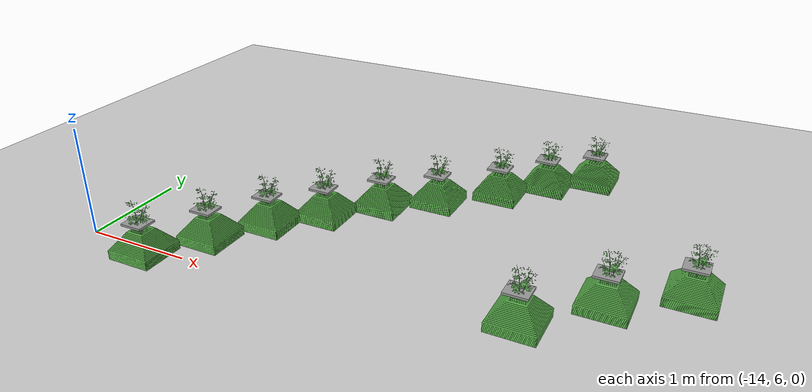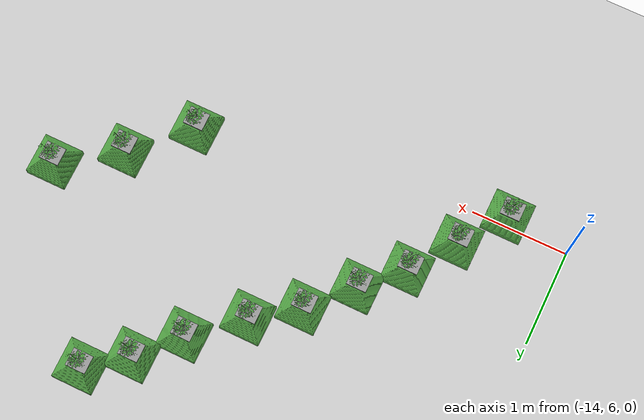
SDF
<sdf version="1.6">
 <world name="default">
  <model name="ground_plane">
   <static>1</static>
   <link name="link">
    <collision name="collision">
     <geometry><plane><normal>0 0 1</normal><size>100 100</size></plane></geometry>
     <surface><friction><ode><mu>100</mu><mu2>50</mu2></ode></friction></surface>
    </collision>
    <visual name="visual">
     <cast_shadows>0</cast_shadows>
     <geometry><plane><normal>0 0 1</normal><size>100 100</size></plane></geometry>
     <material>
      <script><uri>file://media/materials/scripts/gazebo.material</uri><name>Gazebo/Grey</name></script>
     </material>
    </visual>
   </link>
  </model>
  <model name="plant_18">
   <link name="link_0">
    <inertial>
     <mass>1</mass>
     <inertia>
      <ixx>0.0134051</ixx>
      <ixy>0</ixy>
      <ixz>0</ixz>
      <iyy>0.0134051</iyy>
      <iyz>0</iyz>
      <izz>0.0254102</izz>
     </inertia>
    </inertial>
    <gravity>0</gravity>
    <visual name="visual">
     <geometry><mesh><uri>model://square_pot/pot.stl</uri><scale>0.033 0.033 0.02</scale></mesh></geometry>
     <material>
      <lighting>1</lighting>
      <script><uri>file://media/materials/scripts/gazebo.material</uri><name>Gazebo/Grass</name></script>
      <ambient>0.3 0.3 0.3 1</ambient>
      <diffuse>0.7 0.7 0.7 1</diffuse>
      <specular>0.01 0.01 0.01 1</specular>
      <emissive>0 0 0 1</emissive>
      <shader type="vertex"><normal_map>__default__</normal_map></shader>
     </material>
    </visual>
    <collision name="collision">
     <pose>0 0 0.25 0 -0 0</pose>
     <geometry><box><size>0.4 0.4 0.4</size></box></geometry>
     <surface>
      <friction>
       <ode><mu>1</mu><mu2>1</mu2><fdir1>0 0 0</fdir1><slip1>0</slip1><slip2>0</slip2></ode>
       <torsional>
        <coefficient>1</coefficient>
        <patch_radius>0</patch_radius>
        <surface_radius>0</surface_radius>
        <use_patch_radius>1</use_patch_radius>
        <ode><slip>0</slip></ode>
       </torsional>
      </friction>
      <bounce><restitution_coefficient>0</restitution_coefficient><threshold>1e+06</threshold></bounce>
      <contact>
       <collide_without_contact>1</collide_without_contact>
       <collide_without_contact_bitmask>1</collide_without_contact_bitmask>
       <collide_bitmask>1</collide_bitmask>
       <ode>
        <soft_cfm>0</soft_cfm>
        <soft_erp>0.2</soft_erp>
        <kp>1e+13</kp>
        <kd>1</kd>
        <max_vel>0.01</max_vel>
        <min_depth>0</min_depth>
       </ode>
       <bullet>
        <split_impulse>1</split_impulse>
        <split_impulse_penetration_threshold>-0.01</split_impulse_penetration_threshold>
        <soft_cfm>0</soft_cfm>
        <soft_erp>0.2</soft_erp>
        <kp>1e+13</kp>
        <kd>1</kd>
       </bullet>
      </contact>
     </surface>
    </collision>
   </link>
   <link name="link_0_0">
    <pose>-0.011441 -0.008338 0.308474 0 -0 0</pose>
    <inertial>
     <mass>0.000736153</mass>
     <inertia>
      <ixx>2.11165e-06</ixx>
      <ixy>0</ixy>
      <ixz>0</ixz>
      <iyy>2.64382e-06</iyy>
      <iyz>0</iyz>
      <izz>4.70976e-06</izz>
     </inertia>
    </inertial>
    <visual name="visual">
     <geometry><box><size>0.206678 0.18452 0.019291</size></box></geometry>
     <material>
      <lighting>1</lighting>
      <script><uri>file://media/materials/scripts/gazebo.material</uri><name>Gazebo/Grey</name></script>
      <ambient>0.3 0.3 0.3 1</ambient>
      <diffuse>0.7 0.7 0.7 1</diffuse>
      <specular>0.01 0.01 0.01 1</specular>
      <emissive>0 0 0 1</emissive>
     </material>
    </visual>
    <collision name="collision">
     <geometry><box><size>0.206678 0.18452 0.019291</size></box></geometry>
     <surface>
      <friction>
       <ode><mu>1</mu><mu2>1</mu2><fdir1>0 0 0</fdir1><slip1>0</slip1><slip2>0</slip2></ode>
       <torsional>
        <coefficient>1</coefficient>
        <patch_radius>0</patch_radius>
        <surface_radius>0</surface_radius>
        <use_patch_radius>1</use_patch_radius>
        <ode><slip>0</slip></ode>
       </torsional>
      </friction>
      <bounce><restitution_coefficient>0</restitution_coefficient><threshold>1e+06</threshold></bounce>
      <contact>
       <collide_without_contact>0</collide_without_contact>
       <collide_without_contact_bitmask>1</collide_without_contact_bitmask>
       <collide_bitmask>1</collide_bitmask>
       <ode>
        <soft_cfm>0</soft_cfm>
        <soft_erp>0.2</soft_erp>
        <kp>1e+13</kp>
        <kd>1</kd>
        <max_vel>0.01</max_vel>
        <min_depth>0</min_depth>
       </ode>
       <bullet>
        <split_impulse>1</split_impulse>
        <split_impulse_penetration_threshold>-0.01</split_impulse_penetration_threshold>
        <soft_cfm>0</soft_cfm>
        <soft_erp>0.2</soft_erp>
        <kp>1e+13</kp>
        <kd>1</kd>
       </bullet>
      </contact>
     </surface>
    </collision>
   </link>
   <static>1</static>
   <pose>-10.1402 6.40915 0 0 -0 0</pose>
  </model>
  <model name="plant_19">
   <link name="link_0">
    <inertial>
     <mass>1</mass>
     <inertia>
      <ixx>0.0134051</ixx>
      <ixy>0</ixy>
      <ixz>0</ixz>
      <iyy>0.0134051</iyy>
      <iyz>0</iyz>
      <izz>0.0254102</izz>
     </inertia>
    </inertial>
    <gravity>0</gravity>
    <visual name="visual">
     <geometry><mesh><uri>model://square_pot/pot.stl</uri><scale>0.033 0.033 0.02</scale></mesh></geometry>
     <material>
      <lighting>1</lighting>
      <script><uri>file://media/materials/scripts/gazebo.material</uri><name>Gazebo/Grass</name></script>
      <ambient>0.3 0.3 0.3 1</ambient>
      <diffuse>0.7 0.7 0.7 1</diffuse>
      <specular>0.01 0.01 0.01 1</specular>
      <emissive>0 0 0 1</emissive>
      <shader type="vertex"><normal_map>__default__</normal_map></shader>
     </material>
    </visual>
    <collision name="collision">
     <pose>0 0 0.25 0 -0 0</pose>
     <geometry><box><size>0.4 0.4 0.4</size></box></geometry>
     <surface>
      <friction>
       <ode><mu>1</mu><mu2>1</mu2><fdir1>0 0 0</fdir1><slip1>0</slip1><slip2>0</slip2></ode>
       <torsional>
        <coefficient>1</coefficient>
        <patch_radius>0</patch_radius>
        <surface_radius>0</surface_radius>
        <use_patch_radius>1</use_patch_radius>
        <ode><slip>0</slip></ode>
       </torsional>
      </friction>
      <bounce><restitution_coefficient>0</restitution_coefficient><threshold>1e+06</threshold></bounce>
      <contact>
       <collide_without_contact>1</collide_without_contact>
       <collide_without_contact_bitmask>1</collide_without_contact_bitmask>
       <collide_bitmask>1</collide_bitmask>
       <ode>
        <soft_cfm>0</soft_cfm>
        <soft_erp>0.2</soft_erp>
        <kp>1e+13</kp>
        <kd>1</kd>
        <max_vel>0.01</max_vel>
        <min_depth>0</min_depth>
       </ode>
       <bullet>
        <split_impulse>1</split_impulse>
        <split_impulse_penetration_threshold>-0.01</split_impulse_penetration_threshold>
        <soft_cfm>0</soft_cfm>
        <soft_erp>0.2</soft_erp>
        <kp>1e+13</kp>
        <kd>1</kd>
       </bullet>
      </contact>
     </surface>
    </collision>
   </link>
   <link name="link_0_0">
    <pose>-0.011441 -0.008338 0.308474 0 -0 0</pose>
    <inertial>
     <mass>0.000736153</mass>
     <inertia>
      <ixx>2.11165e-06</ixx>
      <ixy>0</ixy>
      <ixz>0</ixz>
      <iyy>2.64382e-06</iyy>
      <iyz>0</iyz>
      <izz>4.70976e-06</izz>
     </inertia>
    </inertial>
    <visual name="visual">
     <geometry><box><size>0.206678 0.18452 0.019291</size></box></geometry>
     <material>
      <lighting>1</lighting>
      <script><uri>file://media/materials/scripts/gazebo.material</uri><name>Gazebo/Grey</name></script>
      <ambient>0.3 0.3 0.3 1</ambient>
      <diffuse>0.7 0.7 0.7 1</diffuse>
      <specular>0.01 0.01 0.01 1</specular>
      <emissive>0 0 0 1</emissive>
     </material>
    </visual>
    <collision name="collision">
     <geometry><box><size>0.206678 0.18452 0.019291</size></box></geometry>
     <surface>
      <friction>
       <ode><mu>1</mu><mu2>1</mu2><fdir1>0 0 0</fdir1><slip1>0</slip1><slip2>0</slip2></ode>
       <torsional>
        <coefficient>1</coefficient>
        <patch_radius>0</patch_radius>
        <surface_radius>0</surface_radius>
        <use_patch_radius>1</use_patch_radius>
        <ode><slip>0</slip></ode>
       </torsional>
      </friction>
      <bounce><restitution_coefficient>0</restitution_coefficient><threshold>1e+06</threshold></bounce>
      <contact>
       <collide_without_contact>0</collide_without_contact>
       <collide_without_contact_bitmask>1</collide_without_contact_bitmask>
       <collide_bitmask>1</collide_bitmask>
       <ode>
        <soft_cfm>0</soft_cfm>
        <soft_erp>0.2</soft_erp>
        <kp>1e+13</kp>
        <kd>1</kd>
        <max_vel>0.01</max_vel>
        <min_depth>0</min_depth>
       </ode>
       <bullet>
        <split_impulse>1</split_impulse>
        <split_impulse_penetration_threshold>-0.01</split_impulse_penetration_threshold>
        <soft_cfm>0</soft_cfm>
        <soft_erp>0.2</soft_erp>
        <kp>1e+13</kp>
        <kd>1</kd>
       </bullet>
      </contact>
     </surface>
    </collision>
   </link>
   <static>1</static>
   <pose>-9.60975 6.93094 0 0 -0 0</pose>
  </model>
  <model name="plant_20">
   <link name="link_0">
    <inertial>
     <mass>1</mass>
     <inertia>
      <ixx>0.0134051</ixx>
      <ixy>0</ixy>
      <ixz>0</ixz>
      <iyy>0.0134051</iyy>
      <iyz>0</iyz>
      <izz>0.0254102</izz>
     </inertia>
    </inertial>
    <gravity>0</gravity>
    <visual name="visual">
     <geometry><mesh><uri>model://square_pot/pot.stl</uri><scale>0.033 0.033 0.02</scale></mesh></geometry>
     <material>
      <lighting>1</lighting>
      <script><uri>file://media/materials/scripts/gazebo.material</uri><name>Gazebo/Grass</name></script>
      <ambient>0.3 0.3 0.3 1</ambient>
      <diffuse>0.7 0.7 0.7 1</diffuse>
      <specular>0.01 0.01 0.01 1</specular>
      <emissive>0 0 0 1</emissive>
      <shader type="vertex"><normal_map>__default__</normal_map></shader>
     </material>
    </visual>
    <collision name="collision">
     <pose>0 0 0.25 0 -0 0</pose>
     <geometry><box><size>0.4 0.4 0.4</size></box></geometry>
     <surface>
      <friction>
       <ode><mu>1</mu><mu2>1</mu2><fdir1>0 0 0</fdir1><slip1>0</slip1><slip2>0</slip2></ode>
       <torsional>
        <coefficient>1</coefficient>
        <patch_radius>0</patch_radius>
        <surface_radius>0</surface_radius>
        <use_patch_radius>1</use_patch_radius>
        <ode><slip>0</slip></ode>
       </torsional>
      </friction>
      <bounce><restitution_coefficient>0</restitution_coefficient><threshold>1e+06</threshold></bounce>
      <contact>
       <collide_without_contact>1</collide_without_contact>
       <collide_without_contact_bitmask>1</collide_without_contact_bitmask>
       <collide_bitmask>1</collide_bitmask>
       <ode>
        <soft_cfm>0</soft_cfm>
        <soft_erp>0.2</soft_erp>
        <kp>1e+13</kp>
        <kd>1</kd>
        <max_vel>0.01</max_vel>
        <min_depth>0</min_depth>
       </ode>
       <bullet>
        <split_impulse>1</split_impulse>
        <split_impulse_penetration_threshold>-0.01</split_impulse_penetration_threshold>
        <soft_cfm>0</soft_cfm>
        <soft_erp>0.2</soft_erp>
        <kp>1e+13</kp>
        <kd>1</kd>
       </bullet>
      </contact>
     </surface>
    </collision>
   </link>
   <link name="link_0_0">
    <pose>-0.011441 -0.008338 0.308474 0 -0 0</pose>
    <inertial>
     <mass>0.000736153</mass>
     <inertia>
      <ixx>2.11165e-06</ixx>
      <ixy>0</ixy>
      <ixz>0</ixz>
      <iyy>2.64382e-06</iyy>
      <iyz>0</iyz>
      <izz>4.70976e-06</izz>
     </inertia>
    </inertial>
    <visual name="visual">
     <geometry><box><size>0.206678 0.18452 0.019291</size></box></geometry>
     <material>
      <lighting>1</lighting>
      <script><uri>file://media/materials/scripts/gazebo.material</uri><name>Gazebo/Grey</name></script>
      <ambient>0.3 0.3 0.3 1</ambient>
      <diffuse>0.7 0.7 0.7 1</diffuse>
      <specular>0.01 0.01 0.01 1</specular>
      <emissive>0 0 0 1</emissive>
     </material>
    </visual>
    <collision name="collision">
     <geometry><box><size>0.206678 0.18452 0.019291</size></box></geometry>
     <surface>
      <friction>
       <ode><mu>1</mu><mu2>1</mu2><fdir1>0 0 0</fdir1><slip1>0</slip1><slip2>0</slip2></ode>
       <torsional>
        <coefficient>1</coefficient>
        <patch_radius>0</patch_radius>
        <surface_radius>0</surface_radius>
        <use_patch_radius>1</use_patch_radius>
        <ode><slip>0</slip></ode>
       </torsional>
      </friction>
      <bounce><restitution_coefficient>0</restitution_coefficient><threshold>1e+06</threshold></bounce>
      <contact>
       <collide_without_contact>0</collide_without_contact>
       <collide_without_contact_bitmask>1</collide_without_contact_bitmask>
       <collide_bitmask>1</collide_bitmask>
       <ode>
        <soft_cfm>0</soft_cfm>
        <soft_erp>0.2</soft_erp>
        <kp>1e+13</kp>
        <kd>1</kd>
        <max_vel>0.01</max_vel>
        <min_depth>0</min_depth>
       </ode>
       <bullet>
        <split_impulse>1</split_impulse>
        <split_impulse_penetration_threshold>-0.01</split_impulse_penetration_threshold>
        <soft_cfm>0</soft_cfm>
        <soft_erp>0.2</soft_erp>
        <kp>1e+13</kp>
        <kd>1</kd>
       </bullet>
      </contact>
     </surface>
    </collision>
   </link>
   <static>1</static>
   <pose>-9.02744 7.34405 0 0 -0 0</pose>
  </model>
  <model name="plant_21">
   <link name="link_0">
    <inertial>
     <mass>1</mass>
     <inertia>
      <ixx>0.0134051</ixx>
      <ixy>0</ixy>
      <ixz>0</ixz>
      <iyy>0.0134051</iyy>
      <iyz>0</iyz>
      <izz>0.0254102</izz>
     </inertia>
    </inertial>
    <gravity>0</gravity>
    <visual name="visual">
     <geometry><mesh><uri>model://square_pot/pot.stl</uri><scale>0.033 0.033 0.02</scale></mesh></geometry>
     <material>
      <lighting>1</lighting>
      <script><uri>file://media/materials/scripts/gazebo.material</uri><name>Gazebo/Grass</name></script>
      <ambient>0.3 0.3 0.3 1</ambient>
      <diffuse>0.7 0.7 0.7 1</diffuse>
      <specular>0.01 0.01 0.01 1</specular>
      <emissive>0 0 0 1</emissive>
      <shader type="vertex"><normal_map>__default__</normal_map></shader>
     </material>
    </visual>
    <collision name="collision">
     <pose>0 0 0.25 0 -0 0</pose>
     <geometry><box><size>0.4 0.4 0.4</size></box></geometry>
     <surface>
      <friction>
       <ode><mu>1</mu><mu2>1</mu2><fdir1>0 0 0</fdir1><slip1>0</slip1><slip2>0</slip2></ode>
       <torsional>
        <coefficient>1</coefficient>
        <patch_radius>0</patch_radius>
        <surface_radius>0</surface_radius>
        <use_patch_radius>1</use_patch_radius>
        <ode><slip>0</slip></ode>
       </torsional>
      </friction>
      <bounce><restitution_coefficient>0</restitution_coefficient><threshold>1e+06</threshold></bounce>
      <contact>
       <collide_without_contact>1</collide_without_contact>
       <collide_without_contact_bitmask>1</collide_without_contact_bitmask>
       <collide_bitmask>1</collide_bitmask>
       <ode>
        <soft_cfm>0</soft_cfm>
        <soft_erp>0.2</soft_erp>
        <kp>1e+13</kp>
        <kd>1</kd>
        <max_vel>0.01</max_vel>
        <min_depth>0</min_depth>
       </ode>
       <bullet>
        <split_impulse>1</split_impulse>
        <split_impulse_penetration_threshold>-0.01</split_impulse_penetration_threshold>
        <soft_cfm>0</soft_cfm>
        <soft_erp>0.2</soft_erp>
        <kp>1e+13</kp>
        <kd>1</kd>
       </bullet>
      </contact>
     </surface>
    </collision>
   </link>
   <link name="link_0_0">
    <pose>-0.011441 -0.008338 0.308474 0 -0 0</pose>
    <inertial>
     <mass>0.000736153</mass>
     <inertia>
      <ixx>2.11165e-06</ixx>
      <ixy>0</ixy>
      <ixz>0</ixz>
      <iyy>2.64382e-06</iyy>
      <iyz>0</iyz>
      <izz>4.70976e-06</izz>
     </inertia>
    </inertial>
    <visual name="visual">
     <geometry><box><size>0.206678 0.18452 0.019291</size></box></geometry>
     <material>
      <lighting>1</lighting>
      <script><uri>file://media/materials/scripts/gazebo.material</uri><name>Gazebo/Grey</name></script>
      <ambient>0.3 0.3 0.3 1</ambient>
      <diffuse>0.7 0.7 0.7 1</diffuse>
      <specular>0.01 0.01 0.01 1</specular>
      <emissive>0 0 0 1</emissive>
     </material>
    </visual>
    <collision name="collision">
     <geometry><box><size>0.206678 0.18452 0.019291</size></box></geometry>
     <surface>
      <friction>
       <ode><mu>1</mu><mu2>1</mu2><fdir1>0 0 0</fdir1><slip1>0</slip1><slip2>0</slip2></ode>
       <torsional>
        <coefficient>1</coefficient>
        <patch_radius>0</patch_radius>
        <surface_radius>0</surface_radius>
        <use_patch_radius>1</use_patch_radius>
        <ode><slip>0</slip></ode>
       </torsional>
      </friction>
      <bounce><restitution_coefficient>0</restitution_coefficient><threshold>1e+06</threshold></bounce>
      <contact>
       <collide_without_contact>0</collide_without_contact>
       <collide_without_contact_bitmask>1</collide_without_contact_bitmask>
       <collide_bitmask>1</collide_bitmask>
       <ode>
        <soft_cfm>0</soft_cfm>
        <soft_erp>0.2</soft_erp>
        <kp>1e+13</kp>
        <kd>1</kd>
        <max_vel>0.01</max_vel>
        <min_depth>0</min_depth>
       </ode>
       <bullet>
        <split_impulse>1</split_impulse>
        <split_impulse_penetration_threshold>-0.01</split_impulse_penetration_threshold>
        <soft_cfm>0</soft_cfm>
        <soft_erp>0.2</soft_erp>
        <kp>1e+13</kp>
        <kd>1</kd>
       </bullet>
      </contact>
     </surface>
    </collision>
   </link>
   <static>1</static>
   <pose>-13.3305 5.9089 0 0 -0 0</pose>
  </model>
  <model name="plant_22">
   <link name="link_0">
    <inertial>
     <mass>1</mass>
     <inertia>
      <ixx>0.0134051</ixx>
      <ixy>0</ixy>
      <ixz>0</ixz>
      <iyy>0.0134051</iyy>
      <iyz>0</iyz>
      <izz>0.0254102</izz>
     </inertia>
    </inertial>
    <gravity>0</gravity>
    <visual name="visual">
     <geometry><mesh><uri>model://square_pot/pot.stl</uri><scale>0.033 0.033 0.02</scale></mesh></geometry>
     <material>
      <lighting>1</lighting>
      <script><uri>file://media/materials/scripts/gazebo.material</uri><name>Gazebo/Grass</name></script>
      <ambient>0.3 0.3 0.3 1</ambient>
      <diffuse>0.7 0.7 0.7 1</diffuse>
      <specular>0.01 0.01 0.01 1</specular>
      <emissive>0 0 0 1</emissive>
      <shader type="vertex"><normal_map>__default__</normal_map></shader>
     </material>
    </visual>
    <collision name="collision">
     <pose>0 0 0.25 0 -0 0</pose>
     <geometry><box><size>0.4 0.4 0.4</size></box></geometry>
     <surface>
      <friction>
       <ode><mu>1</mu><mu2>1</mu2><fdir1>0 0 0</fdir1><slip1>0</slip1><slip2>0</slip2></ode>
       <torsional>
        <coefficient>1</coefficient>
        <patch_radius>0</patch_radius>
        <surface_radius>0</surface_radius>
        <use_patch_radius>1</use_patch_radius>
        <ode><slip>0</slip></ode>
       </torsional>
      </friction>
      <bounce><restitution_coefficient>0</restitution_coefficient><threshold>1e+06</threshold></bounce>
      <contact>
       <collide_without_contact>1</collide_without_contact>
       <collide_without_contact_bitmask>1</collide_without_contact_bitmask>
       <collide_bitmask>1</collide_bitmask>
       <ode>
        <soft_cfm>0</soft_cfm>
        <soft_erp>0.2</soft_erp>
        <kp>1e+13</kp>
        <kd>1</kd>
        <max_vel>0.01</max_vel>
        <min_depth>0</min_depth>
       </ode>
       <bullet>
        <split_impulse>1</split_impulse>
        <split_impulse_penetration_threshold>-0.01</split_impulse_penetration_threshold>
        <soft_cfm>0</soft_cfm>
        <soft_erp>0.2</soft_erp>
        <kp>1e+13</kp>
        <kd>1</kd>
       </bullet>
      </contact>
     </surface>
    </collision>
   </link>
   <link name="link_0_0">
    <pose>-0.011441 -0.008338 0.308474 0 -0 0</pose>
    <inertial>
     <mass>0.000736153</mass>
     <inertia>
      <ixx>2.11165e-06</ixx>
      <ixy>0</ixy>
      <ixz>0</ixz>
      <iyy>2.64382e-06</iyy>
      <iyz>0</iyz>
      <izz>4.70976e-06</izz>
     </inertia>
    </inertial>
    <visual name="visual">
     <geometry><box><size>0.206678 0.18452 0.019291</size></box></geometry>
     <material>
      <lighting>1</lighting>
      <script><uri>file://media/materials/scripts/gazebo.material</uri><name>Gazebo/Grey</name></script>
      <ambient>0.3 0.3 0.3 1</ambient>
      <diffuse>0.7 0.7 0.7 1</diffuse>
      <specular>0.01 0.01 0.01 1</specular>
      <emissive>0 0 0 1</emissive>
     </material>
    </visual>
    <collision name="collision">
     <geometry><box><size>0.206678 0.18452 0.019291</size></box></geometry>
     <surface>
      <friction>
       <ode><mu>1</mu><mu2>1</mu2><fdir1>0 0 0</fdir1><slip1>0</slip1><slip2>0</slip2></ode>
       <torsional>
        <coefficient>1</coefficient>
        <patch_radius>0</patch_radius>
        <surface_radius>0</surface_radius>
        <use_patch_radius>1</use_patch_radius>
        <ode><slip>0</slip></ode>
       </torsional>
      </friction>
      <bounce><restitution_coefficient>0</restitution_coefficient><threshold>1e+06</threshold></bounce>
      <contact>
       <collide_without_contact>0</collide_without_contact>
       <collide_without_contact_bitmask>1</collide_without_contact_bitmask>
       <collide_bitmask>1</collide_bitmask>
       <ode>
        <soft_cfm>0</soft_cfm>
        <soft_erp>0.2</soft_erp>
        <kp>1e+13</kp>
        <kd>1</kd>
        <max_vel>0.01</max_vel>
        <min_depth>0</min_depth>
       </ode>
       <bullet>
        <split_impulse>1</split_impulse>
        <split_impulse_penetration_threshold>-0.01</split_impulse_penetration_threshold>
        <soft_cfm>0</soft_cfm>
        <soft_erp>0.2</soft_erp>
        <kp>1e+13</kp>
        <kd>1</kd>
       </bullet>
      </contact>
     </surface>
    </collision>
   </link>
   <static>1</static>
   <pose>-12.9815 6.36473 0 0 -0 0</pose>
  </model>
  <model name="plant_23">
   <link name="link_0">
    <inertial>
     <mass>1</mass>
     <inertia>
      <ixx>0.0134051</ixx>
      <ixy>0</ixy>
      <ixz>0</ixz>
      <iyy>0.0134051</iyy>
      <iyz>0</iyz>
      <izz>0.0254102</izz>
     </inertia>
    </inertial>
    <gravity>0</gravity>
    <visual name="visual">
     <geometry><mesh><uri>model://square_pot/pot.stl</uri><scale>0.033 0.033 0.02</scale></mesh></geometry>
     <material>
      <lighting>1</lighting>
      <script><uri>file://media/materials/scripts/gazebo.material</uri><name>Gazebo/Grass</name></script>
      <ambient>0.3 0.3 0.3 1</ambient>
      <diffuse>0.7 0.7 0.7 1</diffuse>
      <specular>0.01 0.01 0.01 1</specular>
      <emissive>0 0 0 1</emissive>
      <shader type="vertex"><normal_map>__default__</normal_map></shader>
     </material>
    </visual>
    <collision name="collision">
     <pose>0 0 0.25 0 -0 0</pose>
     <geometry><box><size>0.4 0.4 0.4</size></box></geometry>
     <surface>
      <friction>
       <ode><mu>1</mu><mu2>1</mu2><fdir1>0 0 0</fdir1><slip1>0</slip1><slip2>0</slip2></ode>
       <torsional>
        <coefficient>1</coefficient>
        <patch_radius>0</patch_radius>
        <surface_radius>0</surface_radius>
        <use_patch_radius>1</use_patch_radius>
        <ode><slip>0</slip></ode>
       </torsional>
      </friction>
      <bounce><restitution_coefficient>0</restitution_coefficient><threshold>1e+06</threshold></bounce>
      <contact>
       <collide_without_contact>1</collide_without_contact>
       <collide_without_contact_bitmask>1</collide_without_contact_bitmask>
       <collide_bitmask>1</collide_bitmask>
       <ode>
        <soft_cfm>0</soft_cfm>
        <soft_erp>0.2</soft_erp>
        <kp>1e+13</kp>
        <kd>1</kd>
        <max_vel>0.01</max_vel>
        <min_depth>0</min_depth>
       </ode>
       <bullet>
        <split_impulse>1</split_impulse>
        <split_impulse_penetration_threshold>-0.01</split_impulse_penetration_threshold>
        <soft_cfm>0</soft_cfm>
        <soft_erp>0.2</soft_erp>
        <kp>1e+13</kp>
        <kd>1</kd>
       </bullet>
      </contact>
     </surface>
    </collision>
   </link>
   <link name="link_0_0">
    <pose>-0.011441 -0.008338 0.308474 0 -0 0</pose>
    <inertial>
     <mass>0.000736153</mass>
     <inertia>
      <ixx>2.11165e-06</ixx>
      <ixy>0</ixy>
      <ixz>0</ixz>
      <iyy>2.64382e-06</iyy>
      <iyz>0</iyz>
      <izz>4.70976e-06</izz>
     </inertia>
    </inertial>
    <visual name="visual">
     <geometry><box><size>0.206678 0.18452 0.019291</size></box></geometry>
     <material>
      <lighting>1</lighting>
      <script><uri>file://media/materials/scripts/gazebo.material</uri><name>Gazebo/Grey</name></script>
      <ambient>0.3 0.3 0.3 1</ambient>
      <diffuse>0.7 0.7 0.7 1</diffuse>
      <specular>0.01 0.01 0.01 1</specular>
      <emissive>0 0 0 1</emissive>
     </material>
    </visual>
    <collision name="collision">
     <geometry><box><size>0.206678 0.18452 0.019291</size></box></geometry>
     <surface>
      <friction>
       <ode><mu>1</mu><mu2>1</mu2><fdir1>0 0 0</fdir1><slip1>0</slip1><slip2>0</slip2></ode>
       <torsional>
        <coefficient>1</coefficient>
        <patch_radius>0</patch_radius>
        <surface_radius>0</surface_radius>
        <use_patch_radius>1</use_patch_radius>
        <ode><slip>0</slip></ode>
       </torsional>
      </friction>
      <bounce><restitution_coefficient>0</restitution_coefficient><threshold>1e+06</threshold></bounce>
      <contact>
       <collide_without_contact>0</collide_without_contact>
       <collide_without_contact_bitmask>1</collide_without_contact_bitmask>
       <collide_bitmask>1</collide_bitmask>
       <ode>
        <soft_cfm>0</soft_cfm>
        <soft_erp>0.2</soft_erp>
        <kp>1e+13</kp>
        <kd>1</kd>
        <max_vel>0.01</max_vel>
        <min_depth>0</min_depth>
       </ode>
       <bullet>
        <split_impulse>1</split_impulse>
        <split_impulse_penetration_threshold>-0.01</split_impulse_penetration_threshold>
        <soft_cfm>0</soft_cfm>
        <soft_erp>0.2</soft_erp>
        <kp>1e+13</kp>
        <kd>1</kd>
       </bullet>
      </contact>
     </surface>
    </collision>
   </link>
   <static>1</static>
   <pose>-12.6564 6.82435 0 0 -0 0</pose>
  </model>
  <model name="plant_24">
   <link name="link_0">
    <inertial>
     <mass>1</mass>
     <inertia>
      <ixx>0.0134051</ixx>
      <ixy>0</ixy>
      <ixz>0</ixz>
      <iyy>0.0134051</iyy>
      <iyz>0</iyz>
      <izz>0.0254102</izz>
     </inertia>
    </inertial>
    <gravity>0</gravity>
    <visual name="visual">
     <geometry><mesh><uri>model://square_pot/pot.stl</uri><scale>0.033 0.033 0.02</scale></mesh></geometry>
     <material>
      <lighting>1</lighting>
      <script><uri>file://media/materials/scripts/gazebo.material</uri><name>Gazebo/Grass</name></script>
      <ambient>0.3 0.3 0.3 1</ambient>
      <diffuse>0.7 0.7 0.7 1</diffuse>
      <specular>0.01 0.01 0.01 1</specular>
      <emissive>0 0 0 1</emissive>
      <shader type="vertex"><normal_map>__default__</normal_map></shader>
     </material>
    </visual>
    <collision name="collision">
     <pose>0 0 0.25 0 -0 0</pose>
     <geometry><box><size>0.4 0.4 0.4</size></box></geometry>
     <surface>
      <friction>
       <ode><mu>1</mu><mu2>1</mu2><fdir1>0 0 0</fdir1><slip1>0</slip1><slip2>0</slip2></ode>
       <torsional>
        <coefficient>1</coefficient>
        <patch_radius>0</patch_radius>
        <surface_radius>0</surface_radius>
        <use_patch_radius>1</use_patch_radius>
        <ode><slip>0</slip></ode>
       </torsional>
      </friction>
      <bounce><restitution_coefficient>0</restitution_coefficient><threshold>1e+06</threshold></bounce>
      <contact>
       <collide_without_contact>1</collide_without_contact>
       <collide_without_contact_bitmask>1</collide_without_contact_bitmask>
       <collide_bitmask>1</collide_bitmask>
       <ode>
        <soft_cfm>0</soft_cfm>
        <soft_erp>0.2</soft_erp>
        <kp>1e+13</kp>
        <kd>1</kd>
        <max_vel>0.01</max_vel>
        <min_depth>0</min_depth>
       </ode>
       <bullet>
        <split_impulse>1</split_impulse>
        <split_impulse_penetration_threshold>-0.01</split_impulse_penetration_threshold>
        <soft_cfm>0</soft_cfm>
        <soft_erp>0.2</soft_erp>
        <kp>1e+13</kp>
        <kd>1</kd>
       </bullet>
      </contact>
     </surface>
    </collision>
   </link>
   <link name="link_0_0">
    <pose>-0.011441 -0.008338 0.308474 0 -0 0</pose>
    <inertial>
     <mass>0.000736153</mass>
     <inertia>
      <ixx>2.11165e-06</ixx>
      <ixy>0</ixy>
      <ixz>0</ixz>
      <iyy>2.64382e-06</iyy>
      <iyz>0</iyz>
      <izz>4.70976e-06</izz>
     </inertia>
    </inertial>
    <visual name="visual">
     <geometry><box><size>0.206678 0.18452 0.019291</size></box></geometry>
     <material>
      <lighting>1</lighting>
      <script><uri>file://media/materials/scripts/gazebo.material</uri><name>Gazebo/Grey</name></script>
      <ambient>0.3 0.3 0.3 1</ambient>
      <diffuse>0.7 0.7 0.7 1</diffuse>
      <specular>0.01 0.01 0.01 1</specular>
      <emissive>0 0 0 1</emissive>
     </material>
    </visual>
    <collision name="collision">
     <geometry><box><size>0.206678 0.18452 0.019291</size></box></geometry>
     <surface>
      <friction>
       <ode><mu>1</mu><mu2>1</mu2><fdir1>0 0 0</fdir1><slip1>0</slip1><slip2>0</slip2></ode>
       <torsional>
        <coefficient>1</coefficient>
        <patch_radius>0</patch_radius>
        <surface_radius>0</surface_radius>
        <use_patch_radius>1</use_patch_radius>
        <ode><slip>0</slip></ode>
       </torsional>
      </friction>
      <bounce><restitution_coefficient>0</restitution_coefficient><threshold>1e+06</threshold></bounce>
      <contact>
       <collide_without_contact>0</collide_without_contact>
       <collide_without_contact_bitmask>1</collide_without_contact_bitmask>
       <collide_bitmask>1</collide_bitmask>
       <ode>
        <soft_cfm>0</soft_cfm>
        <soft_erp>0.2</soft_erp>
        <kp>1e+13</kp>
        <kd>1</kd>
        <max_vel>0.01</max_vel>
        <min_depth>0</min_depth>
       </ode>
       <bullet>
        <split_impulse>1</split_impulse>
        <split_impulse_penetration_threshold>-0.01</split_impulse_penetration_threshold>
        <soft_cfm>0</soft_cfm>
        <soft_erp>0.2</soft_erp>
        <kp>1e+13</kp>
        <kd>1</kd>
       </bullet>
      </contact>
     </surface>
    </collision>
   </link>
   <static>1</static>
   <pose>-12.2862 7.19538 0 0 -0 0</pose>
  </model>
  <model name="plant_25">
   <link name="link_0">
    <inertial>
     <mass>1</mass>
     <inertia>
      <ixx>0.0134051</ixx>
      <ixy>0</ixy>
      <ixz>0</ixz>
      <iyy>0.0134051</iyy>
      <iyz>0</iyz>
      <izz>0.0254102</izz>
     </inertia>
    </inertial>
    <gravity>0</gravity>
    <visual name="visual">
     <geometry><mesh><uri>model://square_pot/pot.stl</uri><scale>0.033 0.033 0.02</scale></mesh></geometry>
     <material>
      <lighting>1</lighting>
      <script><uri>file://media/materials/scripts/gazebo.material</uri><name>Gazebo/Grass</name></script>
      <ambient>0.3 0.3 0.3 1</ambient>
      <diffuse>0.7 0.7 0.7 1</diffuse>
      <specular>0.01 0.01 0.01 1</specular>
      <emissive>0 0 0 1</emissive>
      <shader type="vertex"><normal_map>__default__</normal_map></shader>
     </material>
    </visual>
    <collision name="collision">
     <pose>0 0 0.25 0 -0 0</pose>
     <geometry><box><size>0.4 0.4 0.4</size></box></geometry>
     <surface>
      <friction>
       <ode><mu>1</mu><mu2>1</mu2><fdir1>0 0 0</fdir1><slip1>0</slip1><slip2>0</slip2></ode>
       <torsional>
        <coefficient>1</coefficient>
        <patch_radius>0</patch_radius>
        <surface_radius>0</surface_radius>
        <use_patch_radius>1</use_patch_radius>
        <ode><slip>0</slip></ode>
       </torsional>
      </friction>
      <bounce><restitution_coefficient>0</restitution_coefficient><threshold>1e+06</threshold></bounce>
      <contact>
       <collide_without_contact>1</collide_without_contact>
       <collide_without_contact_bitmask>1</collide_without_contact_bitmask>
       <collide_bitmask>1</collide_bitmask>
       <ode>
        <soft_cfm>0</soft_cfm>
        <soft_erp>0.2</soft_erp>
        <kp>1e+13</kp>
        <kd>1</kd>
        <max_vel>0.01</max_vel>
        <min_depth>0</min_depth>
       </ode>
       <bullet>
        <split_impulse>1</split_impulse>
        <split_impulse_penetration_threshold>-0.01</split_impulse_penetration_threshold>
        <soft_cfm>0</soft_cfm>
        <soft_erp>0.2</soft_erp>
        <kp>1e+13</kp>
        <kd>1</kd>
       </bullet>
      </contact>
     </surface>
    </collision>
   </link>
   <link name="link_0_0">
    <pose>-0.011441 -0.008338 0.308474 0 -0 0</pose>
    <inertial>
     <mass>0.000736153</mass>
     <inertia>
      <ixx>2.11165e-06</ixx>
      <ixy>0</ixy>
      <ixz>0</ixz>
      <iyy>2.64382e-06</iyy>
      <iyz>0</iyz>
      <izz>4.70976e-06</izz>
     </inertia>
    </inertial>
    <visual name="visual">
     <geometry><box><size>0.206678 0.18452 0.019291</size></box></geometry>
     <material>
      <lighting>1</lighting>
      <script><uri>file://media/materials/scripts/gazebo.material</uri><name>Gazebo/Grey</name></script>
      <ambient>0.3 0.3 0.3 1</ambient>
      <diffuse>0.7 0.7 0.7 1</diffuse>
      <specular>0.01 0.01 0.01 1</specular>
      <emissive>0 0 0 1</emissive>
     </material>
    </visual>
    <collision name="collision">
     <geometry><box><size>0.206678 0.18452 0.019291</size></box></geometry>
     <surface>
      <friction>
       <ode><mu>1</mu><mu2>1</mu2><fdir1>0 0 0</fdir1><slip1>0</slip1><slip2>0</slip2></ode>
       <torsional>
        <coefficient>1</coefficient>
        <patch_radius>0</patch_radius>
        <surface_radius>0</surface_radius>
        <use_patch_radius>1</use_patch_radius>
        <ode><slip>0</slip></ode>
       </torsional>
      </friction>
      <bounce><restitution_coefficient>0</restitution_coefficient><threshold>1e+06</threshold></bounce>
      <contact>
       <collide_without_contact>0</collide_without_contact>
       <collide_without_contact_bitmask>1</collide_without_contact_bitmask>
       <collide_bitmask>1</collide_bitmask>
       <ode>
        <soft_cfm>0</soft_cfm>
        <soft_erp>0.2</soft_erp>
        <kp>1e+13</kp>
        <kd>1</kd>
        <max_vel>0.01</max_vel>
        <min_depth>0</min_depth>
       </ode>
       <bullet>
        <split_impulse>1</split_impulse>
        <split_impulse_penetration_threshold>-0.01</split_impulse_penetration_threshold>
        <soft_cfm>0</soft_cfm>
        <soft_erp>0.2</soft_erp>
        <kp>1e+13</kp>
        <kd>1</kd>
       </bullet>
      </contact>
     </surface>
    </collision>
   </link>
   <static>1</static>
   <pose>-11.8999 7.60931 0 0 -0 0</pose>
  </model>
  <model name="plant_26">
   <link name="link_0">
    <inertial>
     <mass>1</mass>
     <inertia>
      <ixx>0.0134051</ixx>
      <ixy>0</ixy>
      <ixz>0</ixz>
      <iyy>0.0134051</iyy>
      <iyz>0</iyz>
      <izz>0.0254102</izz>
     </inertia>
    </inertial>
    <gravity>0</gravity>
    <visual name="visual">
     <geometry><mesh><uri>model://square_pot/pot.stl</uri><scale>0.033 0.033 0.02</scale></mesh></geometry>
     <material>
      <lighting>1</lighting>
      <script><uri>file://media/materials/scripts/gazebo.material</uri><name>Gazebo/Grass</name></script>
      <ambient>0.3 0.3 0.3 1</ambient>
      <diffuse>0.7 0.7 0.7 1</diffuse>
      <specular>0.01 0.01 0.01 1</specular>
      <emissive>0 0 0 1</emissive>
      <shader type="vertex"><normal_map>__default__</normal_map></shader>
     </material>
    </visual>
    <collision name="collision">
     <pose>0 0 0.25 0 -0 0</pose>
     <geometry><box><size>0.4 0.4 0.4</size></box></geometry>
     <surface>
      <friction>
       <ode><mu>1</mu><mu2>1</mu2><fdir1>0 0 0</fdir1><slip1>0</slip1><slip2>0</slip2></ode>
       <torsional>
        <coefficient>1</coefficient>
        <patch_radius>0</patch_radius>
        <surface_radius>0</surface_radius>
        <use_patch_radius>1</use_patch_radius>
        <ode><slip>0</slip></ode>
       </torsional>
      </friction>
      <bounce><restitution_coefficient>0</restitution_coefficient><threshold>1e+06</threshold></bounce>
      <contact>
       <collide_without_contact>1</collide_without_contact>
       <collide_without_contact_bitmask>1</collide_without_contact_bitmask>
       <collide_bitmask>1</collide_bitmask>
       <ode>
        <soft_cfm>0</soft_cfm>
        <soft_erp>0.2</soft_erp>
        <kp>1e+13</kp>
        <kd>1</kd>
        <max_vel>0.01</max_vel>
        <min_depth>0</min_depth>
       </ode>
       <bullet>
        <split_impulse>1</split_impulse>
        <split_impulse_penetration_threshold>-0.01</split_impulse_penetration_threshold>
        <soft_cfm>0</soft_cfm>
        <soft_erp>0.2</soft_erp>
        <kp>1e+13</kp>
        <kd>1</kd>
       </bullet>
      </contact>
     </surface>
    </collision>
   </link>
   <link name="link_0_0">
    <pose>-0.011441 -0.008338 0.308474 0 -0 0</pose>
    <inertial>
     <mass>0.000736153</mass>
     <inertia>
      <ixx>2.11165e-06</ixx>
      <ixy>0</ixy>
      <ixz>0</ixz>
      <iyy>2.64382e-06</iyy>
      <iyz>0</iyz>
      <izz>4.70976e-06</izz>
     </inertia>
    </inertial>
    <visual name="visual">
     <geometry><box><size>0.206678 0.18452 0.019291</size></box></geometry>
     <material>
      <lighting>1</lighting>
      <script><uri>file://media/materials/scripts/gazebo.material</uri><name>Gazebo/Grey</name></script>
      <ambient>0.3 0.3 0.3 1</ambient>
      <diffuse>0.7 0.7 0.7 1</diffuse>
      <specular>0.01 0.01 0.01 1</specular>
      <emissive>0 0 0 1</emissive>
     </material>
    </visual>
    <collision name="collision">
     <geometry><box><size>0.206678 0.18452 0.019291</size></box></geometry>
     <surface>
      <friction>
       <ode><mu>1</mu><mu2>1</mu2><fdir1>0 0 0</fdir1><slip1>0</slip1><slip2>0</slip2></ode>
       <torsional>
        <coefficient>1</coefficient>
        <patch_radius>0</patch_radius>
        <surface_radius>0</surface_radius>
        <use_patch_radius>1</use_patch_radius>
        <ode><slip>0</slip></ode>
       </torsional>
      </friction>
      <bounce><restitution_coefficient>0</restitution_coefficient><threshold>1e+06</threshold></bounce>
      <contact>
       <collide_without_contact>0</collide_without_contact>
       <collide_without_contact_bitmask>1</collide_without_contact_bitmask>
       <collide_bitmask>1</collide_bitmask>
       <ode>
        <soft_cfm>0</soft_cfm>
        <soft_erp>0.2</soft_erp>
        <kp>1e+13</kp>
        <kd>1</kd>
        <max_vel>0.01</max_vel>
        <min_depth>0</min_depth>
       </ode>
       <bullet>
        <split_impulse>1</split_impulse>
        <split_impulse_penetration_threshold>-0.01</split_impulse_penetration_threshold>
        <soft_cfm>0</soft_cfm>
        <soft_erp>0.2</soft_erp>
        <kp>1e+13</kp>
        <kd>1</kd>
       </bullet>
      </contact>
     </surface>
    </collision>
   </link>
   <static>1</static>
   <pose>-11.4632 7.93343 0 0 -0 0</pose>
  </model>
  <model name="plant_27">
   <link name="link_0">
    <inertial>
     <mass>1</mass>
     <inertia>
      <ixx>0.0134051</ixx>
      <ixy>0</ixy>
      <ixz>0</ixz>
      <iyy>0.0134051</iyy>
      <iyz>0</iyz>
      <izz>0.0254102</izz>
     </inertia>
    </inertial>
    <gravity>0</gravity>
    <visual name="visual">
     <geometry><mesh><uri>model://square_pot/pot.stl</uri><scale>0.033 0.033 0.02</scale></mesh></geometry>
     <material>
      <lighting>1</lighting>
      <script><uri>file://media/materials/scripts/gazebo.material</uri><name>Gazebo/Grass</name></script>
      <ambient>0.3 0.3 0.3 1</ambient>
      <diffuse>0.7 0.7 0.7 1</diffuse>
      <specular>0.01 0.01 0.01 1</specular>
      <emissive>0 0 0 1</emissive>
      <shader type="vertex"><normal_map>__default__</normal_map></shader>
     </material>
    </visual>
    <collision name="collision">
     <pose>0 0 0.25 0 -0 0</pose>
     <geometry><box><size>0.4 0.4 0.4</size></box></geometry>
     <surface>
      <friction>
       <ode><mu>1</mu><mu2>1</mu2><fdir1>0 0 0</fdir1><slip1>0</slip1><slip2>0</slip2></ode>
       <torsional>
        <coefficient>1</coefficient>
        <patch_radius>0</patch_radius>
        <surface_radius>0</surface_radius>
        <use_patch_radius>1</use_patch_radius>
        <ode><slip>0</slip></ode>
       </torsional>
      </friction>
      <bounce><restitution_coefficient>0</restitution_coefficient><threshold>1e+06</threshold></bounce>
      <contact>
       <collide_without_contact>1</collide_without_contact>
       <collide_without_contact_bitmask>1</collide_without_contact_bitmask>
       <collide_bitmask>1</collide_bitmask>
       <ode>
        <soft_cfm>0</soft_cfm>
        <soft_erp>0.2</soft_erp>
        <kp>1e+13</kp>
        <kd>1</kd>
        <max_vel>0.01</max_vel>
        <min_depth>0</min_depth>
       </ode>
       <bullet>
        <split_impulse>1</split_impulse>
        <split_impulse_penetration_threshold>-0.01</split_impulse_penetration_threshold>
        <soft_cfm>0</soft_cfm>
        <soft_erp>0.2</soft_erp>
        <kp>1e+13</kp>
        <kd>1</kd>
       </bullet>
      </contact>
     </surface>
    </collision>
   </link>
   <link name="link_0_0">
    <pose>-0.011441 -0.008338 0.308474 0 -0 0</pose>
    <inertial>
     <mass>0.000736153</mass>
     <inertia>
      <ixx>2.11165e-06</ixx>
      <ixy>0</ixy>
      <ixz>0</ixz>
      <iyy>2.64382e-06</iyy>
      <iyz>0</iyz>
      <izz>4.70976e-06</izz>
     </inertia>
    </inertial>
    <visual name="visual">
     <geometry><box><size>0.206678 0.18452 0.019291</size></box></geometry>
     <material>
      <lighting>1</lighting>
      <script><uri>file://media/materials/scripts/gazebo.material</uri><name>Gazebo/Grey</name></script>
      <ambient>0.3 0.3 0.3 1</ambient>
      <diffuse>0.7 0.7 0.7 1</diffuse>
      <specular>0.01 0.01 0.01 1</specular>
      <emissive>0 0 0 1</emissive>
     </material>
    </visual>
    <collision name="collision">
     <geometry><box><size>0.206678 0.18452 0.019291</size></box></geometry>
     <surface>
      <friction>
       <ode><mu>1</mu><mu2>1</mu2><fdir1>0 0 0</fdir1><slip1>0</slip1><slip2>0</slip2></ode>
       <torsional>
        <coefficient>1</coefficient>
        <patch_radius>0</patch_radius>
        <surface_radius>0</surface_radius>
        <use_patch_radius>1</use_patch_radius>
        <ode><slip>0</slip></ode>
       </torsional>
      </friction>
      <bounce><restitution_coefficient>0</restitution_coefficient><threshold>1e+06</threshold></bounce>
      <contact>
       <collide_without_contact>0</collide_without_contact>
       <collide_without_contact_bitmask>1</collide_without_contact_bitmask>
       <collide_bitmask>1</collide_bitmask>
       <ode>
        <soft_cfm>0</soft_cfm>
        <soft_erp>0.2</soft_erp>
        <kp>1e+13</kp>
        <kd>1</kd>
        <max_vel>0.01</max_vel>
        <min_depth>0</min_depth>
       </ode>
       <bullet>
        <split_impulse>1</split_impulse>
        <split_impulse_penetration_threshold>-0.01</split_impulse_penetration_threshold>
        <soft_cfm>0</soft_cfm>
        <soft_erp>0.2</soft_erp>
        <kp>1e+13</kp>
        <kd>1</kd>
       </bullet>
      </contact>
     </surface>
    </collision>
   </link>
   <static>1</static>
   <pose>-10.984 8.3541 0 0 -0 0</pose>
  </model>
  <model name="plant_28">
   <link name="link_0">
    <inertial>
     <mass>1</mass>
     <inertia>
      <ixx>0.0134051</ixx>
      <ixy>0</ixy>
      <ixz>0</ixz>
      <iyy>0.0134051</iyy>
      <iyz>0</iyz>
      <izz>0.0254102</izz>
     </inertia>
    </inertial>
    <gravity>0</gravity>
    <visual name="visual">
     <geometry><mesh><uri>model://square_pot/pot.stl</uri><scale>0.033 0.033 0.02</scale></mesh></geometry>
     <material>
      <lighting>1</lighting>
      <script><uri>file://media/materials/scripts/gazebo.material</uri><name>Gazebo/Grass</name></script>
      <ambient>0.3 0.3 0.3 1</ambient>
      <diffuse>0.7 0.7 0.7 1</diffuse>
      <specular>0.01 0.01 0.01 1</specular>
      <emissive>0 0 0 1</emissive>
      <shader type="vertex"><normal_map>__default__</normal_map></shader>
     </material>
    </visual>
    <collision name="collision">
     <pose>0 0 0.25 0 -0 0</pose>
     <geometry><box><size>0.4 0.4 0.4</size></box></geometry>
     <surface>
      <friction>
       <ode><mu>1</mu><mu2>1</mu2><fdir1>0 0 0</fdir1><slip1>0</slip1><slip2>0</slip2></ode>
       <torsional>
        <coefficient>1</coefficient>
        <patch_radius>0</patch_radius>
        <surface_radius>0</surface_radius>
        <use_patch_radius>1</use_patch_radius>
        <ode><slip>0</slip></ode>
       </torsional>
      </friction>
      <bounce><restitution_coefficient>0</restitution_coefficient><threshold>1e+06</threshold></bounce>
      <contact>
       <collide_without_contact>1</collide_without_contact>
       <collide_without_contact_bitmask>1</collide_without_contact_bitmask>
       <collide_bitmask>1</collide_bitmask>
       <ode>
        <soft_cfm>0</soft_cfm>
        <soft_erp>0.2</soft_erp>
        <kp>1e+13</kp>
        <kd>1</kd>
        <max_vel>0.01</max_vel>
        <min_depth>0</min_depth>
       </ode>
       <bullet>
        <split_impulse>1</split_impulse>
        <split_impulse_penetration_threshold>-0.01</split_impulse_penetration_threshold>
        <soft_cfm>0</soft_cfm>
        <soft_erp>0.2</soft_erp>
        <kp>1e+13</kp>
        <kd>1</kd>
       </bullet>
      </contact>
     </surface>
    </collision>
   </link>
   <link name="link_0_0">
    <pose>-0.011441 -0.008338 0.308474 0 -0 0</pose>
    <inertial>
     <mass>0.000736153</mass>
     <inertia>
      <ixx>2.11165e-06</ixx>
      <ixy>0</ixy>
      <ixz>0</ixz>
      <iyy>2.64382e-06</iyy>
      <iyz>0</iyz>
      <izz>4.70976e-06</izz>
     </inertia>
    </inertial>
    <visual name="visual">
     <geometry><box><size>0.206678 0.18452 0.019291</size></box></geometry>
     <material>
      <lighting>1</lighting>
      <script><uri>file://media/materials/scripts/gazebo.material</uri><name>Gazebo/Grey</name></script>
      <ambient>0.3 0.3 0.3 1</ambient>
      <diffuse>0.7 0.7 0.7 1</diffuse>
      <specular>0.01 0.01 0.01 1</specular>
      <emissive>0 0 0 1</emissive>
     </material>
    </visual>
    <collision name="collision">
     <geometry><box><size>0.206678 0.18452 0.019291</size></box></geometry>
     <surface>
      <friction>
       <ode><mu>1</mu><mu2>1</mu2><fdir1>0 0 0</fdir1><slip1>0</slip1><slip2>0</slip2></ode>
       <torsional>
        <coefficient>1</coefficient>
        <patch_radius>0</patch_radius>
        <surface_radius>0</surface_radius>
        <use_patch_radius>1</use_patch_radius>
        <ode><slip>0</slip></ode>
       </torsional>
      </friction>
      <bounce><restitution_coefficient>0</restitution_coefficient><threshold>1e+06</threshold></bounce>
      <contact>
       <collide_without_contact>0</collide_without_contact>
       <collide_without_contact_bitmask>1</collide_without_contact_bitmask>
       <collide_bitmask>1</collide_bitmask>
       <ode>
        <soft_cfm>0</soft_cfm>
        <soft_erp>0.2</soft_erp>
        <kp>1e+13</kp>
        <kd>1</kd>
        <max_vel>0.01</max_vel>
        <min_depth>0</min_depth>
       </ode>
       <bullet>
        <split_impulse>1</split_impulse>
        <split_impulse_penetration_threshold>-0.01</split_impulse_penetration_threshold>
        <soft_cfm>0</soft_cfm>
        <soft_erp>0.2</soft_erp>
        <kp>1e+13</kp>
        <kd>1</kd>
       </bullet>
      </contact>
     </surface>
    </collision>
   </link>
   <static>1</static>
   <pose>-10.6225 8.74808 0 0 -0 0</pose>
  </model>
  <model name="plant_29">
   <link name="link_0">
    <inertial>
     <mass>1</mass>
     <inertia>
      <ixx>0.0134051</ixx>
      <ixy>0</ixy>
      <ixz>0</ixz>
      <iyy>0.0134051</iyy>
      <iyz>0</iyz>
      <izz>0.0254102</izz>
     </inertia>
    </inertial>
    <gravity>0</gravity>
    <visual name="visual">
     <geometry><mesh><uri>model://square_pot/pot.stl</uri><scale>0.033 0.033 0.02</scale></mesh></geometry>
     <material>
      <lighting>1</lighting>
      <script><uri>file://media/materials/scripts/gazebo.material</uri><name>Gazebo/Grass</name></script>
      <ambient>0.3 0.3 0.3 1</ambient>
      <diffuse>0.7 0.7 0.7 1</diffuse>
      <specular>0.01 0.01 0.01 1</specular>
      <emissive>0 0 0 1</emissive>
      <shader type="vertex"><normal_map>__default__</normal_map></shader>
     </material>
    </visual>
    <collision name="collision">
     <pose>0 0 0.25 0 -0 0</pose>
     <geometry><box><size>0.4 0.4 0.4</size></box></geometry>
     <surface>
      <friction>
       <ode><mu>1</mu><mu2>1</mu2><fdir1>0 0 0</fdir1><slip1>0</slip1><slip2>0</slip2></ode>
       <torsional>
        <coefficient>1</coefficient>
        <patch_radius>0</patch_radius>
        <surface_radius>0</surface_radius>
        <use_patch_radius>1</use_patch_radius>
        <ode><slip>0</slip></ode>
       </torsional>
      </friction>
      <bounce><restitution_coefficient>0</restitution_coefficient><threshold>1e+06</threshold></bounce>
      <contact>
       <collide_without_contact>1</collide_without_contact>
       <collide_without_contact_bitmask>1</collide_without_contact_bitmask>
       <collide_bitmask>1</collide_bitmask>
       <ode>
        <soft_cfm>0</soft_cfm>
        <soft_erp>0.2</soft_erp>
        <kp>1e+13</kp>
        <kd>1</kd>
        <max_vel>0.01</max_vel>
        <min_depth>0</min_depth>
       </ode>
       <bullet>
        <split_impulse>1</split_impulse>
        <split_impulse_penetration_threshold>-0.01</split_impulse_penetration_threshold>
        <soft_cfm>0</soft_cfm>
        <soft_erp>0.2</soft_erp>
        <kp>1e+13</kp>
        <kd>1</kd>
       </bullet>
      </contact>
     </surface>
    </collision>
   </link>
   <link name="link_0_0">
    <pose>-0.011441 -0.008338 0.308474 0 -0 0</pose>
    <inertial>
     <mass>0.000736153</mass>
     <inertia>
      <ixx>2.11165e-06</ixx>
      <ixy>0</ixy>
      <ixz>0</ixz>
      <iyy>2.64382e-06</iyy>
      <iyz>0</iyz>
      <izz>4.70976e-06</izz>
     </inertia>
    </inertial>
    <visual name="visual">
     <geometry><box><size>0.206678 0.18452 0.019291</size></box></geometry>
     <material>
      <lighting>1</lighting>
      <script><uri>file://media/materials/scripts/gazebo.material</uri><name>Gazebo/Grey</name></script>
      <ambient>0.3 0.3 0.3 1</ambient>
      <diffuse>0.7 0.7 0.7 1</diffuse>
      <specular>0.01 0.01 0.01 1</specular>
      <emissive>0 0 0 1</emissive>
     </material>
    </visual>
    <collision name="collision">
     <geometry><box><size>0.206678 0.18452 0.019291</size></box></geometry>
     <surface>
      <friction>
       <ode><mu>1</mu><mu2>1</mu2><fdir1>0 0 0</fdir1><slip1>0</slip1><slip2>0</slip2></ode>
       <torsional>
        <coefficient>1</coefficient>
        <patch_radius>0</patch_radius>
        <surface_radius>0</surface_radius>
        <use_patch_radius>1</use_patch_radius>
        <ode><slip>0</slip></ode>
       </torsional>
      </friction>
      <bounce><restitution_coefficient>0</restitution_coefficient><threshold>1e+06</threshold></bounce>
      <contact>
       <collide_without_contact>0</collide_without_contact>
       <collide_without_contact_bitmask>1</collide_without_contact_bitmask>
       <collide_bitmask>1</collide_bitmask>
       <ode>
        <soft_cfm>0</soft_cfm>
        <soft_erp>0.2</soft_erp>
        <kp>1e+13</kp>
        <kd>1</kd>
        <max_vel>0.01</max_vel>
        <min_depth>0</min_depth>
       </ode>
       <bullet>
        <split_impulse>1</split_impulse>
        <split_impulse_penetration_threshold>-0.01</split_impulse_penetration_threshold>
        <soft_cfm>0</soft_cfm>
        <soft_erp>0.2</soft_erp>
        <kp>1e+13</kp>
        <kd>1</kd>
       </bullet>
      </contact>
     </surface>
    </collision>
   </link>
   <static>1</static>
   <pose>-10.229 9.05865 0 0 -0 0</pose>
  </model>
 </world>
</sdf>
